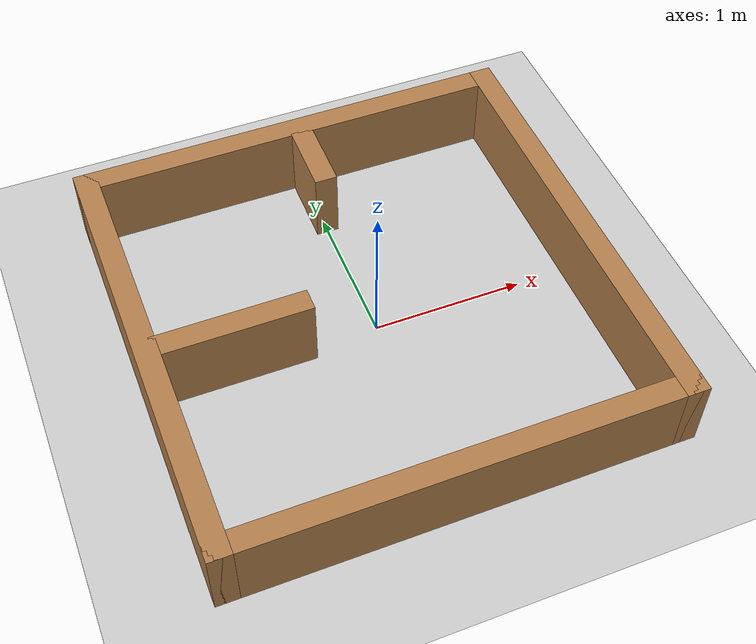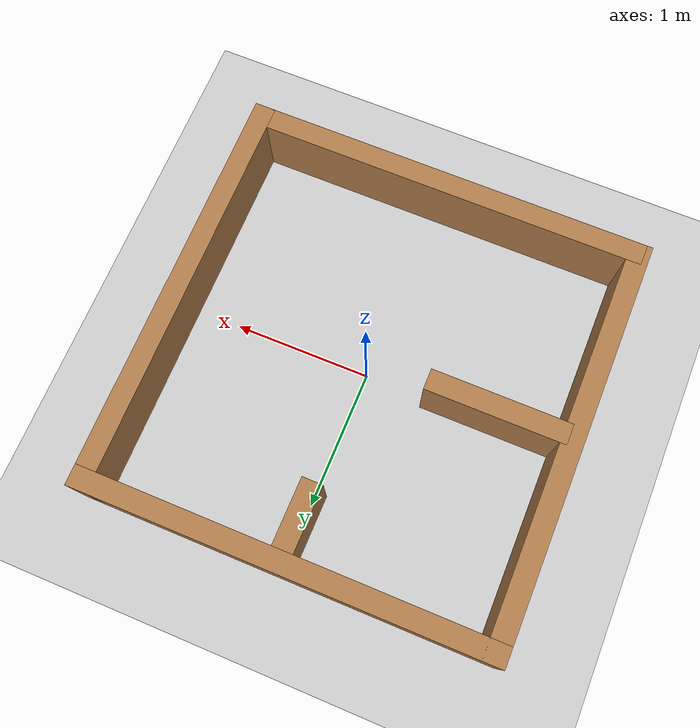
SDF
<sdf version="1.6">
 <world name="default">
  <light name="sun" type="directional">
   <pose>0 0 10 0 -0 0</pose>
   <diffuse>0.8 0.8 0.8 1</diffuse>
   <specular>0.2 0.2 0.2 1</specular>
   <attenuation>
    <range>1000</range>
    <constant>0.9</constant>
    <linear>0.01</linear>
    <quadratic>0.001</quadratic>
   </attenuation>
   <direction>-0.5 0.1 -0.9</direction>
  </light>
  <model name="ground_plane">
   <static>1</static>
   <link name="link">
    <collision name="collision">
     <geometry><plane><normal>0 0 1</normal><size>100 100</size></plane></geometry>
     <surface>
      <contact><collide_bitmask>65535</collide_bitmask></contact>
      <friction><ode><mu>100</mu><mu2>50</mu2></ode></friction>
     </surface>
    </collision>
    <visual name="visual">
     <cast_shadows>0</cast_shadows>
     <geometry><plane><normal>0 0 1</normal><size>100 100</size></plane></geometry>
     <material>
      <script><uri>file://media/materials/scripts/gazebo.material</uri><name>Gazebo/Grey</name></script>
     </material>
    </visual>
   </link>
  </model>
  <gravity>0 0 -9.8</gravity>
  <magnetic_field>6e-06 2.3e-05 -4.2e-05</magnetic_field>
  <atmosphere type="adiabatic"/>
  <physics name="default_physics" default="0" type="ode">
   <max_step_size>0.001</max_step_size>
   <real_time_factor>1</real_time_factor>
   <real_time_update_rate>1000</real_time_update_rate>
  </physics>
  <scene><ambient>0.4 0.4 0.4 1</ambient><background>0.7 0.7 0.7 1</background><shadows>1</shadows></scene>
  <audio><device>default</device></audio>
  <spherical_coordinates>
   <surface_model>EARTH_WGS84</surface_model>
   <latitude_deg>0</latitude_deg>
   <longitude_deg>0</longitude_deg>
   <elevation>0</elevation>
   <heading_deg>0</heading_deg>
  </spherical_coordinates>
  <model name="square">
   <pose>-0.037332 0.02905 0 0 -0 0</pose>
   <link name="Wall_0">
    <collision name="Wall_0_Collision">
     <geometry><box><size>3 0.15 0.5</size></box></geometry>
     <pose>0 0 0.25 0 -0 0</pose>
    </collision>
    <visual name="Wall_0_Visual">
     <pose>0 0 0.25 0 -0 0</pose>
     <geometry><box><size>3 0.15 0.5</size></box></geometry>
     <material>
      <script><uri>file://media/materials/scripts/gazebo.material</uri><name>Gazebo/Wood</name></script>
      <ambient>1 1 1 1</ambient>
     </material>
     <meta><layer>0</layer></meta>
    </visual>
    <pose>-0 1.425 0 0 -0 3.14159</pose>
   </link>
   <link name="Wall_1">
    <collision name="Wall_1_Collision">
     <geometry><box><size>3 0.15 0.5</size></box></geometry>
     <pose>0 0 0.25 0 -0 0</pose>
    </collision>
    <visual name="Wall_1_Visual">
     <pose>0 0 0.25 0 -0 0</pose>
     <geometry><box><size>3 0.15 0.5</size></box></geometry>
     <material>
      <script><uri>file://media/materials/scripts/gazebo.material</uri><name>Gazebo/Wood</name></script>
      <ambient>1 1 1 1</ambient>
     </material>
     <meta><layer>0</layer></meta>
    </visual>
    <pose>-1.425 0 0 0 -0 -1.5708</pose>
   </link>
   <link name="Wall_2">
    <collision name="Wall_2_Collision">
     <geometry><box><size>3 0.15 0.5</size></box></geometry>
     <pose>0 0 0.25 0 -0 0</pose>
    </collision>
    <visual name="Wall_2_Visual">
     <pose>0 0 0.25 0 -0 0</pose>
     <geometry><box><size>3 0.15 0.5</size></box></geometry>
     <material>
      <script><uri>file://media/materials/scripts/gazebo.material</uri><name>Gazebo/Wood</name></script>
      <ambient>1 1 1 1</ambient>
     </material>
     <meta><layer>0</layer></meta>
    </visual>
    <pose>-0 -1.425 0 0 -0 0</pose>
   </link>
   <link name="Wall_3">
    <collision name="Wall_3_Collision">
     <geometry><box><size>3 0.15 0.5</size></box></geometry>
     <pose>0 0 0.25 0 -0 0</pose>
    </collision>
    <visual name="Wall_3_Visual">
     <pose>0 0 0.25 0 -0 0</pose>
     <geometry><box><size>3 0.15 0.5</size></box></geometry>
     <material>
      <script><uri>file://media/materials/scripts/gazebo.material</uri><name>Gazebo/Wood</name></script>
      <ambient>1 1 1 1</ambient>
     </material>
     <meta><layer>0</layer></meta>
    </visual>
    <pose>1.425 0 0 0 -0 1.5708</pose>
   </link>
   <static>1</static>
  </model>
  <model name="wall05m">
   <pose>0.003452 1.15284 0 0 -0 1.56137</pose>
   <link name="Wall_0">
    <collision name="Wall_0_Collision">
     <geometry><box><size>0.5 0.15 0.5</size></box></geometry>
     <pose>0 0 0.25 0 -0 0</pose>
    </collision>
    <visual name="Wall_0_Visual">
     <pose>0 0 0.25 0 -0 0</pose>
     <geometry><box><size>0.5 0.15 0.5</size></box></geometry>
     <material>
      <script><uri>file://media/materials/scripts/gazebo.material</uri><name>Gazebo/Wood</name></script>
      <ambient>1 1 1 1</ambient>
     </material>
     <meta><layer>0</layer></meta>
    </visual>
   </link>
   <static>1</static>
  </model>
  <model name="wall1m">
   <pose>-0.93386 -0.009481 0 0 -0 0</pose>
   <link name="Wall_0">
    <collision name="Wall_0_Collision">
     <geometry><box><size>1 0.15 0.5</size></box></geometry>
     <pose>0 0 0.25 0 -0 0</pose>
    </collision>
    <visual name="Wall_0_Visual">
     <pose>0 0 0.25 0 -0 0</pose>
     <geometry><box><size>1 0.15 0.5</size></box></geometry>
     <material>
      <script><uri>file://media/materials/scripts/gazebo.material</uri><name>Gazebo/Wood</name></script>
      <ambient>1 1 1 1</ambient>
     </material>
     <meta><layer>0</layer></meta>
    </visual>
   </link>
   <static>1</static>
  </model>
 </world>
</sdf>
